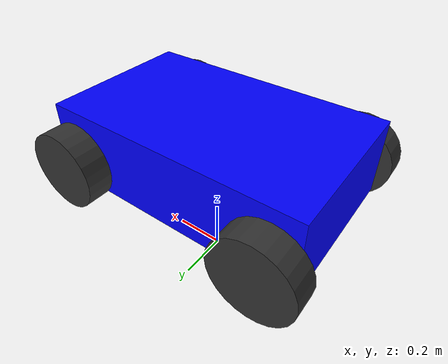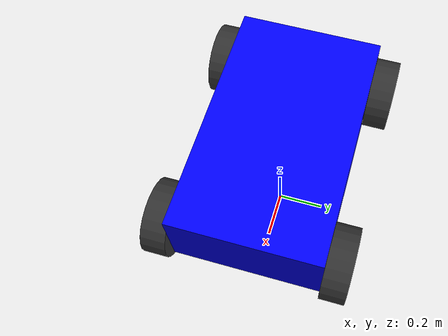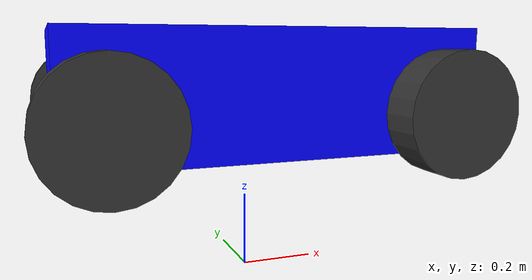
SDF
<?xml version="1.0" ?>
<sdf version="1.8">
  <model name='four_wheel_robot'>
    <pose>0 0 0.3 0 0 0</pose>

    <!-- Chassis (car body) -->
    <link name='chassis'>
      <pose>0 0 0.20 0 0 0</pose>
      <inertial>
        <mass>10.0</mass>
        <inertia>
          <ixx>1.0</ixx> <iyy>1.5</iyy> <izz>1.0</izz>
        </inertia>
      </inertial>
      <visual name='visual'>
        <geometry>
          <box><size>1.0 0.6 0.3</size></box>
        </geometry>
        <material>
          <ambient>0 0 1 1</ambient>
          <diffuse>0 0 1 1</diffuse>
        </material>
      </visual>
      <collision name='collision'>
        <geometry>
          <box><size>1.0 0.6 0.3</size></box>
        </geometry>
      </collision>
    </link>

    <!-- Front Left Wheel -->
    <link name='front_left_wheel'>
      <pose>0.4 0.35 0.15 -1.5707 0 0</pose>
      <inertial>
        <mass>1.5</mass>
        <inertia>
          <ixx>0.1</ixx> <iyy>0.1</iyy> <izz>0.1</izz>
        </inertia>
      </inertial>
      <visual name='visual'>
        <geometry>
          <cylinder>
            <radius>0.15</radius>
            <length>0.1</length>
          </cylinder>
        </geometry>
        <material>
          <ambient>0.2 0.2 0.2 1</ambient>
        </material>
      </visual>
      <collision name='collision'>
        <geometry>
          <cylinder>
            <radius>0.15</radius>
            <length>0.1</length>
          </cylinder>
        </geometry>
        <surface>
          <friction>
            <ode><mu>1.0</mu><mu2>1.0</mu2></ode>
          </friction>
        </surface>
      </collision>
    </link>

    <!-- Front Right Wheel -->
    <link name='front_right_wheel'>
      <pose>0.4 -0.35 0.15 -1.5707 0 0</pose>
      <inertial>
        <mass>1.5</mass>
        <inertia>
          <ixx>0.1</ixx> <iyy>0.1</iyy> <izz>0.1</izz>
        </inertia>
      </inertial>
      <visual name='visual'>
        <geometry>
          <cylinder>
            <radius>0.15</radius>
            <length>0.1</length>
          </cylinder>
        </geometry>
        <material>
          <ambient>0.2 0.2 0.2 1</ambient>
        </material>
      </visual>
      <collision name='collision'>
        <geometry>
          <cylinder>
            <radius>0.15</radius>
            <length>0.1</length>
          </cylinder>
        </geometry>
        <surface>
          <friction>
            <ode><mu>1.0</mu><mu2>1.0</mu2></ode>
          </friction>
        </surface>
      </collision>
    </link>

    <!-- Rear Left Wheel -->
    <link name='rear_left_wheel'>
      <pose>-0.4 0.35 0.15 -1.5707 0 0</pose>
      <inertial>
        <mass>1.5</mass>
        <inertia>
          <ixx>0.1</ixx> <iyy>0.1</iyy> <izz>0.1</izz>
        </inertia>
      </inertial>
      <visual name='visual'>
        <geometry>
          <cylinder>
            <radius>0.15</radius>
            <length>0.1</length>
          </cylinder>
        </geometry>
        <material>
          <ambient>0.2 0.2 0.2 1</ambient>
        </material>
      </visual>
      <collision name='collision'>
        <geometry>
          <cylinder>
            <radius>0.15</radius>
            <length>0.1</length>
          </cylinder>
        </geometry>
        <surface>
          <friction>
            <ode><mu>1.0</mu><mu2>1.0</mu2></ode>
          </friction>
        </surface>
      </collision>
    </link>

    <!-- Rear Right Wheel -->
    <link name='rear_right_wheel'>
      <pose>-0.4 -0.35 0.15 -1.5707 0 0</pose>
      <inertial>
        <mass>1.5</mass>
        <inertia>
          <ixx>0.1</ixx> <iyy>0.1</iyy> <izz>0.1</izz>
        </inertia>
      </inertial>
      <visual name='visual'>
        <geometry>
          <cylinder>
            <radius>0.15</radius>
            <length>0.1</length>
          </cylinder>
        </geometry>
        <material>
          <ambient>0.2 0.2 0.2 1</ambient>
        </material>
      </visual>
      <collision name='collision'>
        <geometry>
          <cylinder>
            <radius>0.15</radius>
            <length>0.1</length>
          </cylinder>
        </geometry>
        <surface>
          <friction>
            <ode><mu>1.0</mu><mu2>1.0</mu2></ode>
          </friction>
        </surface>
      </collision>
    </link>

    <!-- Joints - Front Left -->
    <joint name='front_left_wheel_joint' type='revolute'>
      <parent>chassis</parent>
      <child>front_left_wheel</child>
      <axis>
        <xyz>0 0 1</xyz>
        <limit>
          <effort>20</effort>
          <velocity>100</velocity>
        </limit>
        <dynamics>
          <damping>0.5</damping>
          <friction>0.1</friction>
        </dynamics>
      </axis>
    </joint>

    <!-- Joints - Front Right -->
    <joint name='front_right_wheel_joint' type='revolute'>
      <parent>chassis</parent>
      <child>front_right_wheel</child>
      <axis>
        <xyz>0 0 1</xyz>
        <limit>
          <effort>20</effort>
          <velocity>100</velocity>
        </limit>
        <dynamics>
          <damping>0.5</damping>
          <friction>0.1</friction>
        </dynamics>
      </axis>
    </joint>

    <!-- Joints - Rear Left -->
    <joint name='rear_left_wheel_joint' type='revolute'>
      <parent>chassis</parent>
      <child>rear_left_wheel</child>
      <axis>
        <xyz>0 0 1</xyz>
        <limit>
          <effort>20</effort>
          <velocity>100</velocity>
        </limit>
        <dynamics>
          <damping>0.5</damping>
          <friction>0.1</friction>
        </dynamics>
      </axis>
    </joint>

    <!-- Joints - Rear Right -->
    <joint name='rear_right_wheel_joint' type='revolute'>
      <parent>chassis</parent>
      <child>rear_right_wheel</child>
      <axis>
        <xyz>0 0 1</xyz>
        <limit>
          <effort>20</effort>
          <velocity>100</velocity>
        </limit>
        <dynamics>
          <damping>0.5</damping>
          <friction>0.1</friction>
        </dynamics>
      </axis>
    </joint>

    <!-- Odometry Publisher -->
    <plugin filename="gz-sim-odometry-publisher-system"
            name="gz::sim::systems::OdometryPublisher">
      <odom_frame>odom</odom_frame>
      <robot_base_frame>chassis</robot_base_frame>
      <odom_topic>/odom</odom_topic>
      <odom_publish_frequency>20</odom_publish_frequency>
    </plugin>

    <!-- Joint Force Plugins - Left Side (front + rear controlled together) -->
    <plugin filename="gz-sim-apply-joint-force-system"
            name="gz::sim::systems::ApplyJointForce">
      <joint_name>front_left_wheel_joint</joint_name>
    </plugin>

    <plugin filename="gz-sim-apply-joint-force-system"
            name="gz::sim::systems::ApplyJointForce">
      <joint_name>rear_left_wheel_joint</joint_name>
    </plugin>

    <!-- Joint Force Plugins - Right Side (front + rear controlled together) -->
    <plugin filename="gz-sim-apply-joint-force-system"
            name="gz::sim::systems::ApplyJointForce">
      <joint_name>front_right_wheel_joint</joint_name>
    </plugin>

    <plugin filename="gz-sim-apply-joint-force-system"
            name="gz::sim::systems::ApplyJointForce">
      <joint_name>rear_right_wheel_joint</joint_name>
    </plugin>

  </model>
</sdf>
